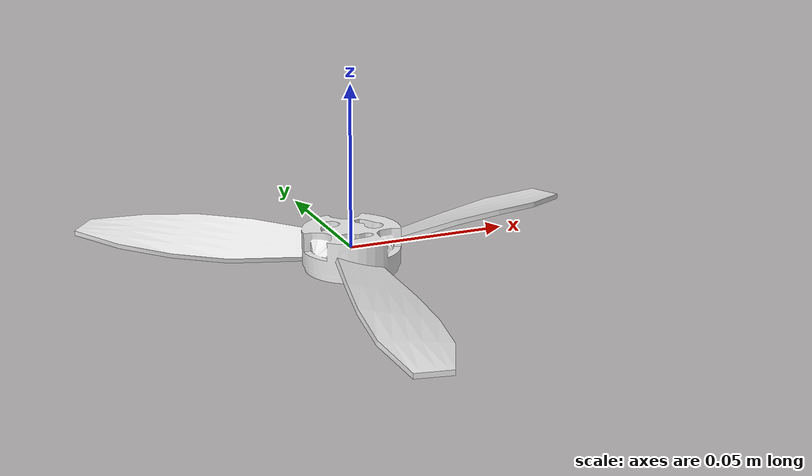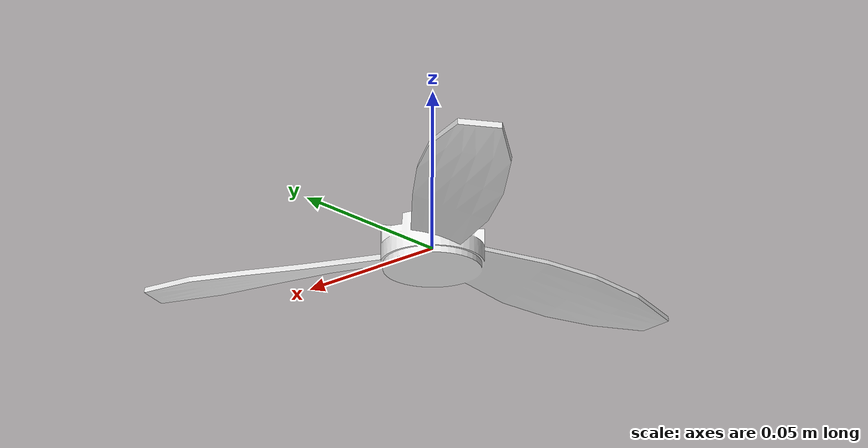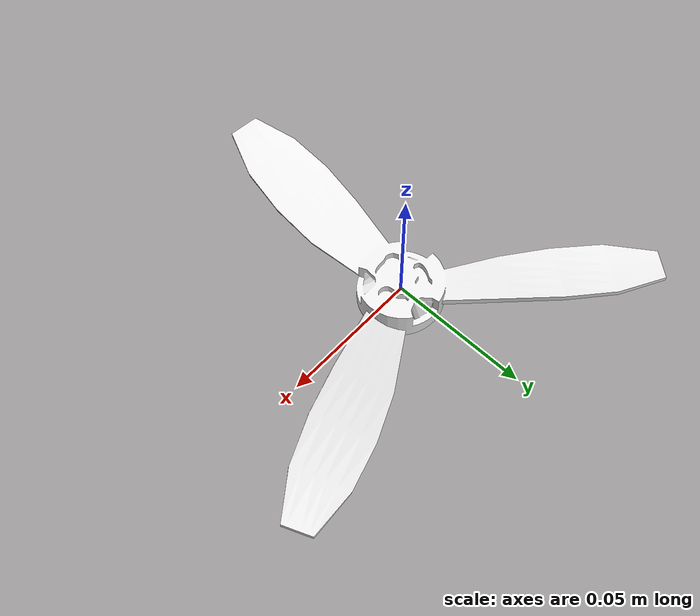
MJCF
<mujoco model="helice_branca">
  <default>
    <default class="visual">
      <geom group="2" type="mesh" contype="0" conaffinity="0"/>
    </default>
    <default class="collision">
      <geom group="3" type="mesh"/>
    </default>
  </default>
  <asset>
    <material name="Mat_0" specular="0.0" shininess="0.0" rgba="0.920270 0.920270 0.920270 1.000000"/>
    <mesh file="helice_branca.obj"/>
  </asset>
  <worldbody>
    <body name="helice_branca">
      <geom material="Mat_0" mesh="helice_branca" class="visual"/>
      <geom mesh="helice_branca" class="collision"/>
    </body>
  </worldbody>
</mujoco>
